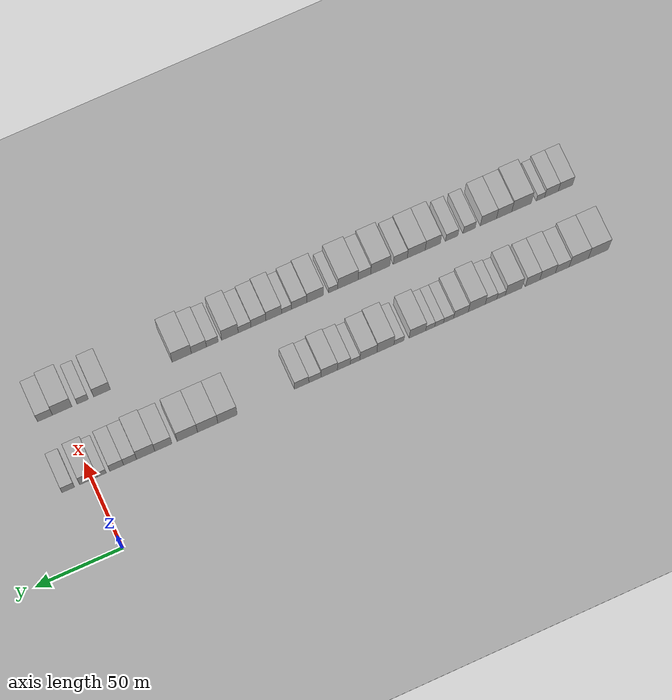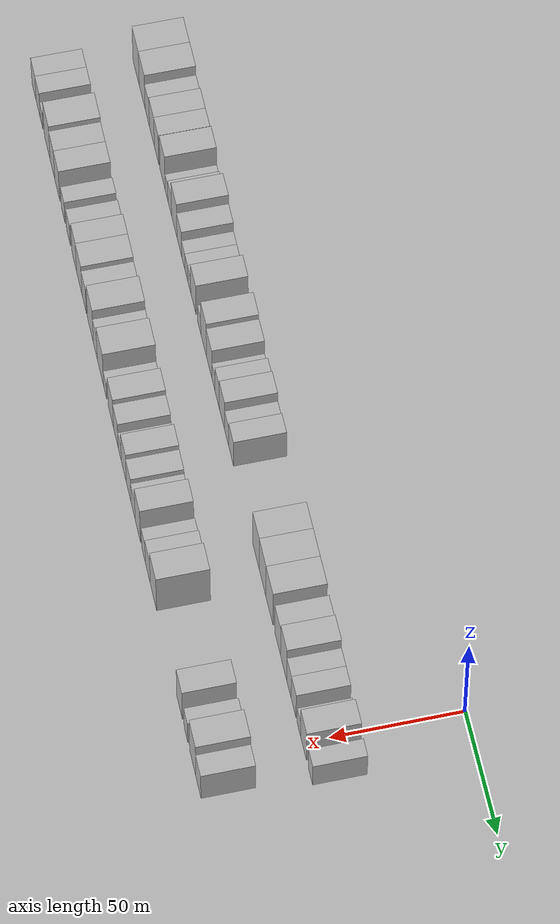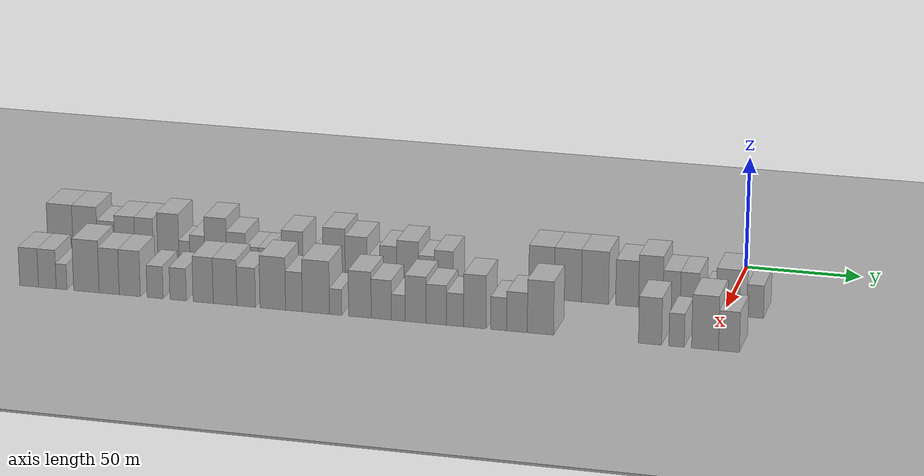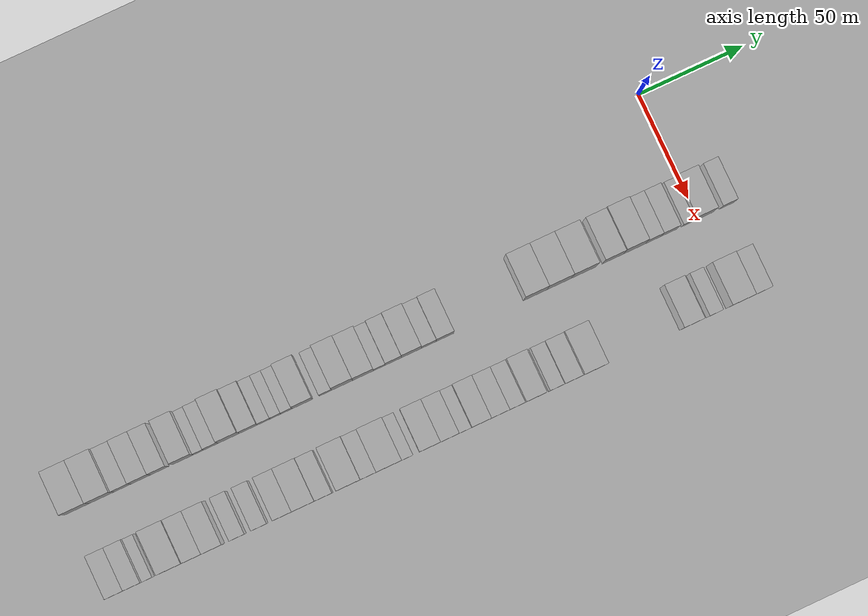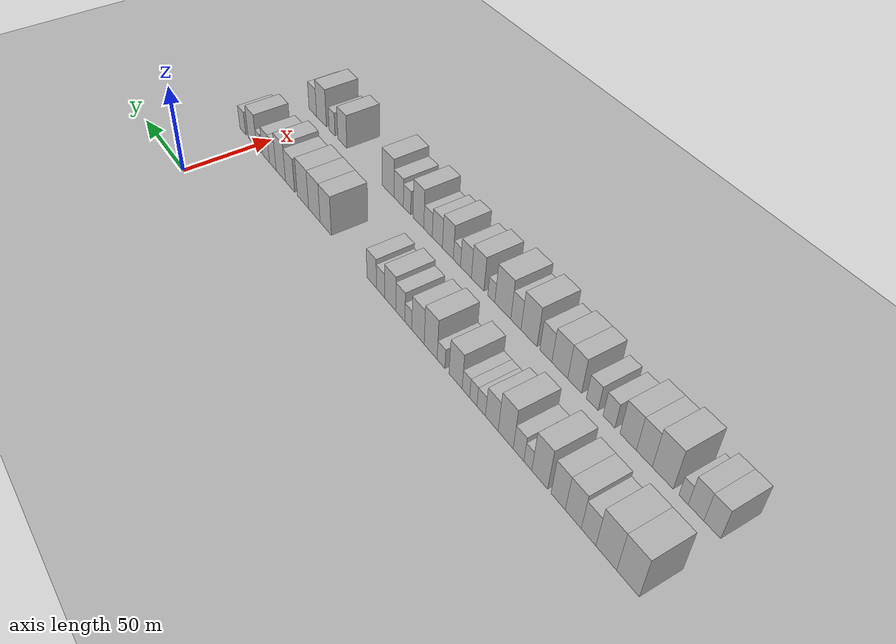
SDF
<sdf version="1.6">
 <world name="default">
  <include><name>ground_plane_1</name><uri>model://HANNAS_ground_plane</uri></include>
  <include>
   <name>ground_plane_2</name>
   <uri>model://HANNAS_ground_plane</uri>
   <pose>100 0 0  0 0 0</pose>
  </include>
  <model name="building_1">
   <static>1</static>
   <pose>50.0000 -294.1482 0 0.000000 0.000000 0.000000</pose>
   <link name="link">
    <pose>0 0 12.00 0 0 0</pose>
    <collision name="collision"><geometry><box><size>20.0000 11.7035 24.0000</size></box></geometry></collision>
    <visual name="visual">
     <cast_shadows>0</cast_shadows>
     <geometry><box><size>20.0000 11.7035 24.0000</size></box></geometry>
     <material>
      <script>
       <uri>model://HANNAS_wall/materials/scripts</uri>
       <uri>model://HANNAS_wall/materials/textures</uri>
       <name>vrc/HANNAS_wall</name>
      </script>
     </material>
    </visual>
   </link>
  </model>
  <model name="building_2">
   <static>1</static>
   <pose>50.0000 -282.6605 0 0.000000 0.000000 0.000000</pose>
   <link name="link">
    <pose>0 0 12.00 0 0 0</pose>
    <collision name="collision"><geometry><box><size>20.0000 11.2720 24.0000</size></box></geometry></collision>
    <visual name="visual">
     <cast_shadows>0</cast_shadows>
     <geometry><box><size>20.0000 11.2720 24.0000</size></box></geometry>
     <material>
      <script>
       <uri>model://HANNAS_wall/materials/scripts</uri>
       <uri>model://HANNAS_wall/materials/textures</uri>
       <name>vrc/HANNAS_wall</name>
      </script>
     </material>
    </visual>
   </link>
  </model>
  <model name="building_3">
   <static>1</static>
   <pose>50.0000 -272.9549 0 0.000000 0.000000 0.000000</pose>
   <link name="link">
    <pose>0 0 9.00 0 0 0</pose>
    <collision name="collision"><geometry><box><size>20.0000 8.1390 18.0000</size></box></geometry></collision>
    <visual name="visual">
     <cast_shadows>0</cast_shadows>
     <geometry><box><size>20.0000 8.1390 18.0000</size></box></geometry>
     <material>
      <script>
       <uri>model://HANNAS_wall/materials/scripts</uri>
       <uri>model://HANNAS_wall/materials/textures</uri>
       <name>vrc/HANNAS_wall</name>
      </script>
     </material>
    </visual>
   </link>
  </model>
  <model name="building_4">
   <static>1</static>
   <pose>50.0000 -264.2775 0 0.000000 0.000000 0.000000</pose>
   <link name="link">
    <pose>0 0 10.50 0 0 0</pose>
    <collision name="collision"><geometry><box><size>20.0000 9.2159 21.0000</size></box></geometry></collision>
    <visual name="visual">
     <cast_shadows>0</cast_shadows>
     <geometry><box><size>20.0000 9.2159 21.0000</size></box></geometry>
     <material>
      <script>
       <uri>model://HANNAS_wall/materials/scripts</uri>
       <uri>model://HANNAS_wall/materials/textures</uri>
       <name>vrc/HANNAS_wall</name>
      </script>
     </material>
    </visual>
   </link>
  </model>
  <model name="building_5">
   <static>1</static>
   <pose>50.0000 -255.4613 0 0.000000 0.000000 0.000000</pose>
   <link name="link">
    <pose>0 0 10.50 0 0 0</pose>
    <collision name="collision"><geometry><box><size>20.0000 8.4165 21.0000</size></box></geometry></collision>
    <visual name="visual">
     <cast_shadows>0</cast_shadows>
     <geometry><box><size>20.0000 8.4165 21.0000</size></box></geometry>
     <material>
      <script>
       <uri>model://HANNAS_wall/materials/scripts</uri>
       <uri>model://HANNAS_wall/materials/textures</uri>
       <name>vrc/HANNAS_wall</name>
      </script>
     </material>
    </visual>
   </link>
  </model>
  <model name="building_6">
   <static>1</static>
   <pose>50.0000 -244.3734 0 0.000000 0.000000 0.000000</pose>
   <link name="link">
    <pose>0 0 12.00 0 0 0</pose>
    <collision name="collision"><geometry><box><size>20.0000 9.7594 24.0000</size></box></geometry></collision>
    <visual name="visual">
     <cast_shadows>0</cast_shadows>
     <geometry><box><size>20.0000 9.7594 24.0000</size></box></geometry>
     <material>
      <script>
       <uri>model://HANNAS_wall/materials/scripts</uri>
       <uri>model://HANNAS_wall/materials/textures</uri>
       <name>vrc/HANNAS_wall</name>
      </script>
     </material>
    </visual>
   </link>
  </model>
  <model name="building_7">
   <static>1</static>
   <pose>50.0000 -237.0098 0 0.000000 0.000000 0.000000</pose>
   <link name="link">
    <pose>0 0 6.00 0 0 0</pose>
    <collision name="collision"><geometry><box><size>20.0000 4.9678 12.0000</size></box></geometry></collision>
    <visual name="visual">
     <cast_shadows>0</cast_shadows>
     <geometry><box><size>20.0000 4.9678 12.0000</size></box></geometry>
     <material>
      <script>
       <uri>model://HANNAS_wall/materials/scripts</uri>
       <uri>model://HANNAS_wall/materials/textures</uri>
       <name>vrc/HANNAS_wall</name>
      </script>
     </material>
    </visual>
   </link>
  </model>
  <model name="building_8">
   <static>1</static>
   <pose>50.0000 -231.1403 0 0.000000 0.000000 0.000000</pose>
   <link name="link">
    <pose>0 0 7.50 0 0 0</pose>
    <collision name="collision"><geometry><box><size>20.0000 6.7712 15.0000</size></box></geometry></collision>
    <visual name="visual">
     <cast_shadows>0</cast_shadows>
     <geometry><box><size>20.0000 6.7712 15.0000</size></box></geometry>
     <material>
      <script>
       <uri>model://HANNAS_wall/materials/scripts</uri>
       <uri>model://HANNAS_wall/materials/textures</uri>
       <name>vrc/HANNAS_wall</name>
      </script>
     </material>
    </visual>
   </link>
  </model>
  <model name="building_9">
   <static>1</static>
   <pose>50.0000 -222.8036 0 0.000000 0.000000 0.000000</pose>
   <link name="link">
    <pose>0 0 12.00 0 0 0</pose>
    <collision name="collision"><geometry><box><size>20.0000 9.9022 24.0000</size></box></geometry></collision>
    <visual name="visual">
     <cast_shadows>0</cast_shadows>
     <geometry><box><size>20.0000 9.9022 24.0000</size></box></geometry>
     <material>
      <script>
       <uri>model://HANNAS_wall/materials/scripts</uri>
       <uri>model://HANNAS_wall/materials/textures</uri>
       <name>vrc/HANNAS_wall</name>
      </script>
     </material>
    </visual>
   </link>
  </model>
  <model name="building_10">
   <static>1</static>
   <pose>50.0000 -213.5388 0 0.000000 0.000000 0.000000</pose>
   <link name="link">
    <pose>0 0 9.00 0 0 0</pose>
    <collision name="collision"><geometry><box><size>20.0000 8.6273 18.0000</size></box></geometry></collision>
    <visual name="visual">
     <cast_shadows>0</cast_shadows>
     <geometry><box><size>20.0000 8.6273 18.0000</size></box></geometry>
     <material>
      <script>
       <uri>model://HANNAS_wall/materials/scripts</uri>
       <uri>model://HANNAS_wall/materials/textures</uri>
       <name>vrc/HANNAS_wall</name>
      </script>
     </material>
    </visual>
   </link>
  </model>
  <model name="building_11">
   <static>1</static>
   <pose>50.0000 -206.2895 0 0.000000 0.000000 0.000000</pose>
   <link name="link">
    <pose>0 0 6.00 0 0 0</pose>
    <collision name="collision"><geometry><box><size>20.0000 5.8713 12.0000</size></box></geometry></collision>
    <visual name="visual">
     <cast_shadows>0</cast_shadows>
     <geometry><box><size>20.0000 5.8713 12.0000</size></box></geometry>
     <material>
      <script>
       <uri>model://HANNAS_wall/materials/scripts</uri>
       <uri>model://HANNAS_wall/materials/textures</uri>
       <name>vrc/HANNAS_wall</name>
      </script>
     </material>
    </visual>
   </link>
  </model>
  <model name="building_12">
   <static>1</static>
   <pose>50.0000 -200.8021 0 0.000000 0.000000 0.000000</pose>
   <link name="link">
    <pose>0 0 6.00 0 0 0</pose>
    <collision name="collision"><geometry><box><size>20.0000 5.1035 12.0000</size></box></geometry></collision>
    <visual name="visual">
     <cast_shadows>0</cast_shadows>
     <geometry><box><size>20.0000 5.1035 12.0000</size></box></geometry>
     <material>
      <script>
       <uri>model://HANNAS_wall/materials/scripts</uri>
       <uri>model://HANNAS_wall/materials/textures</uri>
       <name>vrc/HANNAS_wall</name>
      </script>
     </material>
    </visual>
   </link>
  </model>
  <model name="building_13">
   <static>1</static>
   <pose>50.0000 -195.5627 0 0.000000 0.000000 0.000000</pose>
   <link name="link">
    <pose>0 0 6.00 0 0 0</pose>
    <collision name="collision"><geometry><box><size>20.0000 5.3754 12.0000</size></box></geometry></collision>
    <visual name="visual">
     <cast_shadows>0</cast_shadows>
     <geometry><box><size>20.0000 5.3754 12.0000</size></box></geometry>
     <material>
      <script>
       <uri>model://HANNAS_wall/materials/scripts</uri>
       <uri>model://HANNAS_wall/materials/textures</uri>
       <name>vrc/HANNAS_wall</name>
      </script>
     </material>
    </visual>
   </link>
  </model>
  <model name="building_14">
   <static>1</static>
   <pose>50.0000 -188.0589 0 0.000000 0.000000 0.000000</pose>
   <link name="link">
    <pose>0 0 10.50 0 0 0</pose>
    <collision name="collision"><geometry><box><size>20.0000 9.6321 21.0000</size></box></geometry></collision>
    <visual name="visual">
     <cast_shadows>0</cast_shadows>
     <geometry><box><size>20.0000 9.6321 21.0000</size></box></geometry>
     <material>
      <script>
       <uri>model://HANNAS_wall/materials/scripts</uri>
       <uri>model://HANNAS_wall/materials/textures</uri>
       <name>vrc/HANNAS_wall</name>
      </script>
     </material>
    </visual>
   </link>
  </model>
  <model name="building_15">
   <static>1</static>
   <pose>50.0000 -177.3027 0 0.000000 0.000000 0.000000</pose>
   <link name="link">
    <pose>0 0 6.00 0 0 0</pose>
    <collision name="collision"><geometry><box><size>20.0000 5.8805 12.0000</size></box></geometry></collision>
    <visual name="visual">
     <cast_shadows>0</cast_shadows>
     <geometry><box><size>20.0000 5.8805 12.0000</size></box></geometry>
     <material>
      <script>
       <uri>model://HANNAS_wall/materials/scripts</uri>
       <uri>model://HANNAS_wall/materials/textures</uri>
       <name>vrc/HANNAS_wall</name>
      </script>
     </material>
    </visual>
   </link>
  </model>
  <model name="building_16">
   <static>1</static>
   <pose>50.0000 -169.3864 0 0.000000 0.000000 0.000000</pose>
   <link name="link">
    <pose>0 0 12.00 0 0 0</pose>
    <collision name="collision"><geometry><box><size>20.0000 9.9520 24.0000</size></box></geometry></collision>
    <visual name="visual">
     <cast_shadows>0</cast_shadows>
     <geometry><box><size>20.0000 9.9520 24.0000</size></box></geometry>
     <material>
      <script>
       <uri>model://HANNAS_wall/materials/scripts</uri>
       <uri>model://HANNAS_wall/materials/textures</uri>
       <name>vrc/HANNAS_wall</name>
      </script>
     </material>
    </visual>
   </link>
  </model>
  <model name="building_17">
   <static>1</static>
   <pose>50.0000 -159.4956 0 0.000000 0.000000 0.000000</pose>
   <link name="link">
    <pose>0 0 10.50 0 0 0</pose>
    <collision name="collision"><geometry><box><size>20.0000 9.8298 21.0000</size></box></geometry></collision>
    <visual name="visual">
     <cast_shadows>0</cast_shadows>
     <geometry><box><size>20.0000 9.8298 21.0000</size></box></geometry>
     <material>
      <script>
       <uri>model://HANNAS_wall/materials/scripts</uri>
       <uri>model://HANNAS_wall/materials/textures</uri>
       <name>vrc/HANNAS_wall</name>
      </script>
     </material>
    </visual>
   </link>
  </model>
  <model name="building_18">
   <static>1</static>
   <pose>50.0000 -151.7910 0 0.000000 0.000000 0.000000</pose>
   <link name="link">
    <pose>0 0 6.00 0 0 0</pose>
    <collision name="collision"><geometry><box><size>20.0000 5.5794 12.0000</size></box></geometry></collision>
    <visual name="visual">
     <cast_shadows>0</cast_shadows>
     <geometry><box><size>20.0000 5.5794 12.0000</size></box></geometry>
     <material>
      <script>
       <uri>model://HANNAS_wall/materials/scripts</uri>
       <uri>model://HANNAS_wall/materials/textures</uri>
       <name>vrc/HANNAS_wall</name>
      </script>
     </material>
    </visual>
   </link>
  </model>
  <model name="building_19">
   <static>1</static>
   <pose>50.0000 -145.2090 0 0.000000 0.000000 0.000000</pose>
   <link name="link">
    <pose>0 0 9.00 0 0 0</pose>
    <collision name="collision"><geometry><box><size>20.0000 7.5845 18.0000</size></box></geometry></collision>
    <visual name="visual">
     <cast_shadows>0</cast_shadows>
     <geometry><box><size>20.0000 7.5845 18.0000</size></box></geometry>
     <material>
      <script>
       <uri>model://HANNAS_wall/materials/scripts</uri>
       <uri>model://HANNAS_wall/materials/textures</uri>
       <name>vrc/HANNAS_wall</name>
      </script>
     </material>
    </visual>
   </link>
  </model>
  <model name="building_20">
   <static>1</static>
   <pose>50.0000 -136.6767 0 0.000000 0.000000 0.000000</pose>
   <link name="link">
    <pose>0 0 10.50 0 0 0</pose>
    <collision name="collision"><geometry><box><size>20.0000 9.4801 21.0000</size></box></geometry></collision>
    <visual name="visual">
     <cast_shadows>0</cast_shadows>
     <geometry><box><size>20.0000 9.4801 21.0000</size></box></geometry>
     <material>
      <script>
       <uri>model://HANNAS_wall/materials/scripts</uri>
       <uri>model://HANNAS_wall/materials/textures</uri>
       <name>vrc/HANNAS_wall</name>
      </script>
     </material>
    </visual>
   </link>
  </model>
  <model name="building_21">
   <static>1</static>
   <pose>50.0000 -128.4001 0 0.000000 0.000000 0.000000</pose>
   <link name="link">
    <pose>0 0 7.50 0 0 0</pose>
    <collision name="collision"><geometry><box><size>20.0000 7.0731 15.0000</size></box></geometry></collision>
    <visual name="visual">
     <cast_shadows>0</cast_shadows>
     <geometry><box><size>20.0000 7.0731 15.0000</size></box></geometry>
     <material>
      <script>
       <uri>model://HANNAS_wall/materials/scripts</uri>
       <uri>model://HANNAS_wall/materials/textures</uri>
       <name>vrc/HANNAS_wall</name>
      </script>
     </material>
    </visual>
   </link>
  </model>
  <model name="building_22">
   <static>1</static>
   <pose>50.0000 -120.6991 0 0.000000 0.000000 0.000000</pose>
   <link name="link">
    <pose>0 0 9.00 0 0 0</pose>
    <collision name="collision"><geometry><box><size>20.0000 8.3287 18.0000</size></box></geometry></collision>
    <visual name="visual">
     <cast_shadows>0</cast_shadows>
     <geometry><box><size>20.0000 8.3287 18.0000</size></box></geometry>
     <material>
      <script>
       <uri>model://HANNAS_wall/materials/scripts</uri>
       <uri>model://HANNAS_wall/materials/textures</uri>
       <name>vrc/HANNAS_wall</name>
      </script>
     </material>
    </visual>
   </link>
  </model>
  <model name="building_23">
   <static>1</static>
   <pose>50.0000 -77.7936 0 0.000000 0.000000 0.000000</pose>
   <link name="link">
    <pose>0 0 12.00 0 0 0</pose>
    <collision name="collision"><geometry><box><size>20.0000 11.1608 24.0000</size></box></geometry></collision>
    <visual name="visual">
     <cast_shadows>0</cast_shadows>
     <geometry><box><size>20.0000 11.1608 24.0000</size></box></geometry>
     <material>
      <script>
       <uri>model://HANNAS_wall/materials/scripts</uri>
       <uri>model://HANNAS_wall/materials/textures</uri>
       <name>vrc/HANNAS_wall</name>
      </script>
     </material>
    </visual>
   </link>
  </model>
  <model name="building_24">
   <static>1</static>
   <pose>50.0000 -66.3565 0 0.000000 0.000000 0.000000</pose>
   <link name="link">
    <pose>0 0 12.00 0 0 0</pose>
    <collision name="collision"><geometry><box><size>20.0000 11.7134 24.0000</size></box></geometry></collision>
    <visual name="visual">
     <cast_shadows>0</cast_shadows>
     <geometry><box><size>20.0000 11.7134 24.0000</size></box></geometry>
     <material>
      <script>
       <uri>model://HANNAS_wall/materials/scripts</uri>
       <uri>model://HANNAS_wall/materials/textures</uri>
       <name>vrc/HANNAS_wall</name>
      </script>
     </material>
    </visual>
   </link>
  </model>
  <model name="building_25">
   <static>1</static>
   <pose>50.0000 -54.6394 0 0.000000 0.000000 0.000000</pose>
   <link name="link">
    <pose>0 0 12.00 0 0 0</pose>
    <collision name="collision"><geometry><box><size>20.0000 11.7207 24.0000</size></box></geometry></collision>
    <visual name="visual">
     <cast_shadows>0</cast_shadows>
     <geometry><box><size>20.0000 11.7207 24.0000</size></box></geometry>
     <material>
      <script>
       <uri>model://HANNAS_wall/materials/scripts</uri>
       <uri>model://HANNAS_wall/materials/textures</uri>
       <name>vrc/HANNAS_wall</name>
      </script>
     </material>
    </visual>
   </link>
  </model>
  <model name="building_26">
   <static>1</static>
   <pose>50.0000 -40.8496 0 0.000000 0.000000 0.000000</pose>
   <link name="link">
    <pose>0 0 10.50 0 0 0</pose>
    <collision name="collision"><geometry><box><size>20.0000 9.8590 21.0000</size></box></geometry></collision>
    <visual name="visual">
     <cast_shadows>0</cast_shadows>
     <geometry><box><size>20.0000 9.8590 21.0000</size></box></geometry>
     <material>
      <script>
       <uri>model://HANNAS_wall/materials/scripts</uri>
       <uri>model://HANNAS_wall/materials/textures</uri>
       <name>vrc/HANNAS_wall</name>
      </script>
     </material>
    </visual>
   </link>
  </model>
  <model name="building_27">
   <static>1</static>
   <pose>50.0000 -30.7052 0 0.000000 0.000000 0.000000</pose>
   <link name="link">
    <pose>0 0 12.00 0 0 0</pose>
    <collision name="collision"><geometry><box><size>20.0000 10.4298 24.0000</size></box></geometry></collision>
    <visual name="visual">
     <cast_shadows>0</cast_shadows>
     <geometry><box><size>20.0000 10.4298 24.0000</size></box></geometry>
     <material>
      <script>
       <uri>model://HANNAS_wall/materials/scripts</uri>
       <uri>model://HANNAS_wall/materials/textures</uri>
       <name>vrc/HANNAS_wall</name>
      </script>
     </material>
    </visual>
   </link>
  </model>
  <model name="building_28">
   <static>1</static>
   <pose>50.0000 -21.7638 0 0.000000 0.000000 0.000000</pose>
   <link name="link">
    <pose>0 0 9.00 0 0 0</pose>
    <collision name="collision"><geometry><box><size>20.0000 7.4530 18.0000</size></box></geometry></collision>
    <visual name="visual">
     <cast_shadows>0</cast_shadows>
     <geometry><box><size>20.0000 7.4530 18.0000</size></box></geometry>
     <material>
      <script>
       <uri>model://HANNAS_wall/materials/scripts</uri>
       <uri>model://HANNAS_wall/materials/textures</uri>
       <name>vrc/HANNAS_wall</name>
      </script>
     </material>
    </visual>
   </link>
  </model>
  <model name="building_29">
   <static>1</static>
   <pose>50.0000 -14.0712 0 0.000000 0.000000 0.000000</pose>
   <link name="link">
    <pose>0 0 9.00 0 0 0</pose>
    <collision name="collision"><geometry><box><size>20.0000 7.9321 18.0000</size></box></geometry></collision>
    <visual name="visual">
     <cast_shadows>0</cast_shadows>
     <geometry><box><size>20.0000 7.9321 18.0000</size></box></geometry>
     <material>
      <script>
       <uri>model://HANNAS_wall/materials/scripts</uri>
       <uri>model://HANNAS_wall/materials/textures</uri>
       <name>vrc/HANNAS_wall</name>
      </script>
     </material>
    </visual>
   </link>
  </model>
  <model name="building_30">
   <static>1</static>
   <pose>50.0000 -5.4879 0 0.000000 0.000000 0.000000</pose>
   <link name="link">
    <pose>0 0 6.00 0 0 0</pose>
    <collision name="collision"><geometry><box><size>20.0000 5.2346 12.0000</size></box></geometry></collision>
    <visual name="visual">
     <cast_shadows>0</cast_shadows>
     <geometry><box><size>20.0000 5.2346 12.0000</size></box></geometry>
     <material>
      <script>
       <uri>model://HANNAS_wall/materials/scripts</uri>
       <uri>model://HANNAS_wall/materials/textures</uri>
       <name>vrc/HANNAS_wall</name>
      </script>
     </material>
    </visual>
   </link>
  </model>
  <model name="building_31">
   <static>1</static>
   <pose>50.0000 2.1301 0 0.000000 0.000000 0.000000</pose>
   <link name="link">
    <pose>0 0 10.50 0 0 0</pose>
    <collision name="collision"><geometry><box><size>20.0000 10.0014 21.0000</size></box></geometry></collision>
    <visual name="visual">
     <cast_shadows>0</cast_shadows>
     <geometry><box><size>20.0000 10.0014 21.0000</size></box></geometry>
     <material>
      <script>
       <uri>model://HANNAS_wall/materials/scripts</uri>
       <uri>model://HANNAS_wall/materials/textures</uri>
       <name>vrc/HANNAS_wall</name>
      </script>
     </material>
    </visual>
   </link>
  </model>
  <model name="building_32">
   <static>1</static>
   <pose>50.0000 13.6980 0 0.000000 0.000000 0.000000</pose>
   <link name="link">
    <pose>0 0 7.50 0 0 0</pose>
    <collision name="collision"><geometry><box><size>20.0000 7.1344 15.0000</size></box></geometry></collision>
    <visual name="visual">
     <cast_shadows>0</cast_shadows>
     <geometry><box><size>20.0000 7.1344 15.0000</size></box></geometry>
     <material>
      <script>
       <uri>model://HANNAS_wall/materials/scripts</uri>
       <uri>model://HANNAS_wall/materials/textures</uri>
       <name>vrc/HANNAS_wall</name>
      </script>
     </material>
    </visual>
   </link>
  </model>
  <model name="building_65">
   <static>1</static>
   <pose>90.0000 -293.7502 0 0.000000 0.000000 0.000000</pose>
   <link name="link">
    <pose>0 0 9.00 0 0 0</pose>
    <collision name="collision"><geometry><box><size>20.0000 8.4997 18.0000</size></box></geometry></collision>
    <visual name="visual">
     <cast_shadows>0</cast_shadows>
     <geometry><box><size>20.0000 8.4997 18.0000</size></box></geometry>
     <material>
      <script>
       <uri>model://HANNAS_wall/materials/scripts</uri>
       <uri>model://HANNAS_wall/materials/textures</uri>
       <name>vrc/HANNAS_wall</name>
      </script>
     </material>
    </visual>
   </link>
  </model>
  <model name="building_66">
   <static>1</static>
   <pose>90.0000 -285.4611 0 0.000000 0.000000 0.000000</pose>
   <link name="link">
    <pose>0 0 9.00 0 0 0</pose>
    <collision name="collision"><geometry><box><size>20.0000 8.0784 18.0000</size></box></geometry></collision>
    <visual name="visual">
     <cast_shadows>0</cast_shadows>
     <geometry><box><size>20.0000 8.0784 18.0000</size></box></geometry>
     <material>
      <script>
       <uri>model://HANNAS_wall/materials/scripts</uri>
       <uri>model://HANNAS_wall/materials/textures</uri>
       <name>vrc/HANNAS_wall</name>
      </script>
     </material>
    </visual>
   </link>
  </model>
  <model name="building_67">
   <static>1</static>
   <pose>90.0000 -278.9709 0 0.000000 0.000000 0.000000</pose>
   <link name="link">
    <pose>0 0 6.00 0 0 0</pose>
    <collision name="collision"><geometry><box><size>20.0000 4.9021 12.0000</size></box></geometry></collision>
    <visual name="visual">
     <cast_shadows>0</cast_shadows>
     <geometry><box><size>20.0000 4.9021 12.0000</size></box></geometry>
     <material>
      <script>
       <uri>model://HANNAS_wall/materials/scripts</uri>
       <uri>model://HANNAS_wall/materials/textures</uri>
       <name>vrc/HANNAS_wall</name>
      </script>
     </material>
    </visual>
   </link>
  </model>
  <model name="building_68">
   <static>1</static>
   <pose>90.0000 -267.7687 0 0.000000 0.000000 0.000000</pose>
   <link name="link">
    <pose>0 0 12.00 0 0 0</pose>
    <collision name="collision"><geometry><box><size>20.0000 11.5023 24.0000</size></box></geometry></collision>
    <visual name="visual">
     <cast_shadows>0</cast_shadows>
     <geometry><box><size>20.0000 11.5023 24.0000</size></box></geometry>
     <material>
      <script>
       <uri>model://HANNAS_wall/materials/scripts</uri>
       <uri>model://HANNAS_wall/materials/textures</uri>
       <name>vrc/HANNAS_wall</name>
      </script>
     </material>
    </visual>
   </link>
  </model>
  <model name="building_69">
   <static>1</static>
   <pose>90.0000 -257.5056 0 0.000000 0.000000 0.000000</pose>
   <link name="link">
    <pose>0 0 10.50 0 0 0</pose>
    <collision name="collision"><geometry><box><size>20.0000 9.0239 21.0000</size></box></geometry></collision>
    <visual name="visual">
     <cast_shadows>0</cast_shadows>
     <geometry><box><size>20.0000 9.0239 21.0000</size></box></geometry>
     <material>
      <script>
       <uri>model://HANNAS_wall/materials/scripts</uri>
       <uri>model://HANNAS_wall/materials/textures</uri>
       <name>vrc/HANNAS_wall</name>
      </script>
     </material>
    </visual>
   </link>
  </model>
  <model name="building_70">
   <static>1</static>
   <pose>90.0000 -248.2330 0 0.000000 0.000000 0.000000</pose>
   <link name="link">
    <pose>0 0 10.50 0 0 0</pose>
    <collision name="collision"><geometry><box><size>20.0000 9.5214 21.0000</size></box></geometry></collision>
    <visual name="visual">
     <cast_shadows>0</cast_shadows>
     <geometry><box><size>20.0000 9.5214 21.0000</size></box></geometry>
     <material>
      <script>
       <uri>model://HANNAS_wall/materials/scripts</uri>
       <uri>model://HANNAS_wall/materials/textures</uri>
       <name>vrc/HANNAS_wall</name>
      </script>
     </material>
    </visual>
   </link>
  </model>
  <model name="building_71">
   <static>1</static>
   <pose>90.0000 -236.8808 0 0.000000 0.000000 0.000000</pose>
   <link name="link">
    <pose>0 0 7.50 0 0 0</pose>
    <collision name="collision"><geometry><box><size>20.0000 7.1831 15.0000</size></box></geometry></collision>
    <visual name="visual">
     <cast_shadows>0</cast_shadows>
     <geometry><box><size>20.0000 7.1831 15.0000</size></box></geometry>
     <material>
      <script>
       <uri>model://HANNAS_wall/materials/scripts</uri>
       <uri>model://HANNAS_wall/materials/textures</uri>
       <name>vrc/HANNAS_wall</name>
      </script>
     </material>
    </visual>
   </link>
  </model>
  <model name="building_72">
   <static>1</static>
   <pose>90.0000 -226.6260 0 0.000000 0.000000 0.000000</pose>
   <link name="link">
    <pose>0 0 7.50 0 0 0</pose>
    <collision name="collision"><geometry><box><size>20.0000 7.3265 15.0000</size></box></geometry></collision>
    <visual name="visual">
     <cast_shadows>0</cast_shadows>
     <geometry><box><size>20.0000 7.3265 15.0000</size></box></geometry>
     <material>
      <script>
       <uri>model://HANNAS_wall/materials/scripts</uri>
       <uri>model://HANNAS_wall/materials/textures</uri>
       <name>vrc/HANNAS_wall</name>
      </script>
     </material>
    </visual>
   </link>
  </model>
  <model name="building_73">
   <static>1</static>
   <pose>90.0000 -215.5003 0 0.000000 0.000000 0.000000</pose>
   <link name="link">
    <pose>0 0 10.50 0 0 0</pose>
    <collision name="collision"><geometry><box><size>20.0000 8.9249 21.0000</size></box></geometry></collision>
    <visual name="visual">
     <cast_shadows>0</cast_shadows>
     <geometry><box><size>20.0000 8.9249 21.0000</size></box></geometry>
     <material>
      <script>
       <uri>model://HANNAS_wall/materials/scripts</uri>
       <uri>model://HANNAS_wall/materials/textures</uri>
       <name>vrc/HANNAS_wall</name>
      </script>
     </material>
    </visual>
   </link>
  </model>
  <model name="building_74">
   <static>1</static>
   <pose>90.0000 -205.7942 0 0.000000 0.000000 0.000000</pose>
   <link name="link">
    <pose>0 0 10.50 0 0 0</pose>
    <collision name="collision"><geometry><box><size>20.0000 10.4873 21.0000</size></box></geometry></collision>
    <visual name="visual">
     <cast_shadows>0</cast_shadows>
     <geometry><box><size>20.0000 10.4873 21.0000</size></box></geometry>
     <material>
      <script>
       <uri>model://HANNAS_wall/materials/scripts</uri>
       <uri>model://HANNAS_wall/materials/textures</uri>
       <name>vrc/HANNAS_wall</name>
      </script>
     </material>
    </visual>
   </link>
  </model>
  <model name="building_75">
   <static>1</static>
   <pose>90.0000 -196.4518 0 0.000000 0.000000 0.000000</pose>
   <link name="link">
    <pose>0 0 9.00 0 0 0</pose>
    <collision name="collision"><geometry><box><size>20.0000 8.1975 18.0000</size></box></geometry></collision>
    <visual name="visual">
     <cast_shadows>0</cast_shadows>
     <geometry><box><size>20.0000 8.1975 18.0000</size></box></geometry>
     <material>
      <script>
       <uri>model://HANNAS_wall/materials/scripts</uri>
       <uri>model://HANNAS_wall/materials/textures</uri>
       <name>vrc/HANNAS_wall</name>
      </script>
     </material>
    </visual>
   </link>
  </model>
  <model name="building_76">
   <static>1</static>
   <pose>90.0000 -184.7329 0 0.000000 0.000000 0.000000</pose>
   <link name="link">
    <pose>0 0 12.00 0 0 0</pose>
    <collision name="collision"><geometry><box><size>20.0000 11.2403 24.0000</size></box></geometry></collision>
    <visual name="visual">
     <cast_shadows>0</cast_shadows>
     <geometry><box><size>20.0000 11.2403 24.0000</size></box></geometry>
     <material>
      <script>
       <uri>model://HANNAS_wall/materials/scripts</uri>
       <uri>model://HANNAS_wall/materials/textures</uri>
       <name>vrc/HANNAS_wall</name>
      </script>
     </material>
    </visual>
   </link>
  </model>
  <model name="building_77">
   <static>1</static>
   <pose>90.0000 -175.4276 0 0.000000 0.000000 0.000000</pose>
   <link name="link">
    <pose>0 0 9.00 0 0 0</pose>
    <collision name="collision"><geometry><box><size>20.0000 7.3704 18.0000</size></box></geometry></collision>
    <visual name="visual">
     <cast_shadows>0</cast_shadows>
     <geometry><box><size>20.0000 7.3704 18.0000</size></box></geometry>
     <material>
      <script>
       <uri>model://HANNAS_wall/materials/scripts</uri>
       <uri>model://HANNAS_wall/materials/textures</uri>
       <name>vrc/HANNAS_wall</name>
      </script>
     </material>
    </visual>
   </link>
  </model>
  <model name="building_78">
   <static>1</static>
   <pose>90.0000 -165.8020 0 0.000000 0.000000 0.000000</pose>
   <link name="link">
    <pose>0 0 12.00 0 0 0</pose>
    <collision name="collision"><geometry><box><size>20.0000 11.8809 24.0000</size></box></geometry></collision>
    <visual name="visual">
     <cast_shadows>0</cast_shadows>
     <geometry><box><size>20.0000 11.8809 24.0000</size></box></geometry>
     <material>
      <script>
       <uri>model://HANNAS_wall/materials/scripts</uri>
       <uri>model://HANNAS_wall/materials/textures</uri>
       <name>vrc/HANNAS_wall</name>
      </script>
     </material>
    </visual>
   </link>
  </model>
  <model name="building_79">
   <static>1</static>
   <pose>90.0000 -157.2036 0 0.000000 0.000000 0.000000</pose>
   <link name="link">
    <pose>0 0 6.00 0 0 0</pose>
    <collision name="collision"><geometry><box><size>20.0000 5.3159 12.0000</size></box></geometry></collision>
    <visual name="visual">
     <cast_shadows>0</cast_shadows>
     <geometry><box><size>20.0000 5.3159 12.0000</size></box></geometry>
     <material>
      <script>
       <uri>model://HANNAS_wall/materials/scripts</uri>
       <uri>model://HANNAS_wall/materials/textures</uri>
       <name>vrc/HANNAS_wall</name>
      </script>
     </material>
    </visual>
   </link>
  </model>
  <model name="building_80">
   <static>1</static>
   <pose>90.0000 -146.6384 0 0.000000 0.000000 0.000000</pose>
   <link name="link">
    <pose>0 0 10.50 0 0 0</pose>
    <collision name="collision"><geometry><box><size>20.0000 9.8146 21.0000</size></box></geometry></collision>
    <visual name="visual">
     <cast_shadows>0</cast_shadows>
     <geometry><box><size>20.0000 9.8146 21.0000</size></box></geometry>
     <material>
      <script>
       <uri>model://HANNAS_wall/materials/scripts</uri>
       <uri>model://HANNAS_wall/materials/textures</uri>
       <name>vrc/HANNAS_wall</name>
      </script>
     </material>
    </visual>
   </link>
  </model>
  <model name="building_81">
   <static>1</static>
   <pose>90.0000 -137.3453 0 0.000000 0.000000 0.000000</pose>
   <link name="link">
    <pose>0 0 9.00 0 0 0</pose>
    <collision name="collision"><geometry><box><size>20.0000 8.7716 18.0000</size></box></geometry></collision>
    <visual name="visual">
     <cast_shadows>0</cast_shadows>
     <geometry><box><size>20.0000 8.7716 18.0000</size></box></geometry>
     <material>
      <script>
       <uri>model://HANNAS_wall/materials/scripts</uri>
       <uri>model://HANNAS_wall/materials/textures</uri>
       <name>vrc/HANNAS_wall</name>
      </script>
     </material>
    </visual>
   </link>
  </model>
  <model name="building_82">
   <static>1</static>
   <pose>90.0000 -130.0260 0 0.000000 0.000000 0.000000</pose>
   <link name="link">
    <pose>0 0 6.00 0 0 0</pose>
    <collision name="collision"><geometry><box><size>20.0000 5.8669 12.0000</size></box></geometry></collision>
    <visual name="visual">
     <cast_shadows>0</cast_shadows>
     <geometry><box><size>20.0000 5.8669 12.0000</size></box></geometry>
     <material>
      <script>
       <uri>model://HANNAS_wall/materials/scripts</uri>
       <uri>model://HANNAS_wall/materials/textures</uri>
       <name>vrc/HANNAS_wall</name>
      </script>
     </material>
    </visual>
   </link>
  </model>
  <model name="building_83">
   <static>1</static>
   <pose>90.0000 -122.5373 0 0.000000 0.000000 0.000000</pose>
   <link name="link">
    <pose>0 0 10.50 0 0 0</pose>
    <collision name="collision"><geometry><box><size>20.0000 9.1106 21.0000</size></box></geometry></collision>
    <visual name="visual">
     <cast_shadows>0</cast_shadows>
     <geometry><box><size>20.0000 9.1106 21.0000</size></box></geometry>
     <material>
      <script>
       <uri>model://HANNAS_wall/materials/scripts</uri>
       <uri>model://HANNAS_wall/materials/textures</uri>
       <name>vrc/HANNAS_wall</name>
      </script>
     </material>
    </visual>
   </link>
  </model>
  <model name="building_84">
   <static>1</static>
   <pose>90.0000 -113.6392 0 0.000000 0.000000 0.000000</pose>
   <link name="link">
    <pose>0 0 9.00 0 0 0</pose>
    <collision name="collision"><geometry><box><size>20.0000 8.6855 18.0000</size></box></geometry></collision>
    <visual name="visual">
     <cast_shadows>0</cast_shadows>
     <geometry><box><size>20.0000 8.6855 18.0000</size></box></geometry>
     <material>
      <script>
       <uri>model://HANNAS_wall/materials/scripts</uri>
       <uri>model://HANNAS_wall/materials/textures</uri>
       <name>vrc/HANNAS_wall</name>
      </script>
     </material>
    </visual>
   </link>
  </model>
  <model name="building_85">
   <static>1</static>
   <pose>90.0000 -105.5969 0 0.000000 0.000000 0.000000</pose>
   <link name="link">
    <pose>0 0 7.50 0 0 0</pose>
    <collision name="collision"><geometry><box><size>20.0000 7.3992 15.0000</size></box></geometry></collision>
    <visual name="visual">
     <cast_shadows>0</cast_shadows>
     <geometry><box><size>20.0000 7.3992 15.0000</size></box></geometry>
     <material>
      <script>
       <uri>model://HANNAS_wall/materials/scripts</uri>
       <uri>model://HANNAS_wall/materials/textures</uri>
       <name>vrc/HANNAS_wall</name>
      </script>
     </material>
    </visual>
   </link>
  </model>
  <model name="building_86">
   <static>1</static>
   <pose>90.0000 -97.0830 0 0.000000 0.000000 0.000000</pose>
   <link name="link">
    <pose>0 0 12.00 0 0 0</pose>
    <collision name="collision"><geometry><box><size>20.0000 9.6287 24.0000</size></box></geometry></collision>
    <visual name="visual">
     <cast_shadows>0</cast_shadows>
     <geometry><box><size>20.0000 9.6287 24.0000</size></box></geometry>
     <material>
      <script>
       <uri>model://HANNAS_wall/materials/scripts</uri>
       <uri>model://HANNAS_wall/materials/textures</uri>
       <name>vrc/HANNAS_wall</name>
      </script>
     </material>
    </visual>
   </link>
  </model>
  <model name="building_87">
   <static>1</static>
   <pose>90.0000 -86.8640 0 0.000000 0.000000 0.000000</pose>
   <link name="link">
    <pose>0 0 7.50 0 0 0</pose>
    <collision name="collision"><geometry><box><size>20.0000 6.8093 15.0000</size></box></geometry></collision>
    <visual name="visual">
     <cast_shadows>0</cast_shadows>
     <geometry><box><size>20.0000 6.8093 15.0000</size></box></geometry>
     <material>
      <script>
       <uri>model://HANNAS_wall/materials/scripts</uri>
       <uri>model://HANNAS_wall/materials/textures</uri>
       <name>vrc/HANNAS_wall</name>
      </script>
     </material>
    </visual>
   </link>
  </model>
  <model name="building_88">
   <static>1</static>
   <pose>90.0000 -79.1011 0 0.000000 0.000000 0.000000</pose>
   <link name="link">
    <pose>0 0 9.00 0 0 0</pose>
    <collision name="collision"><geometry><box><size>20.0000 8.7165 18.0000</size></box></geometry></collision>
    <visual name="visual">
     <cast_shadows>0</cast_shadows>
     <geometry><box><size>20.0000 8.7165 18.0000</size></box></geometry>
     <material>
      <script>
       <uri>model://HANNAS_wall/materials/scripts</uri>
       <uri>model://HANNAS_wall/materials/textures</uri>
       <name>vrc/HANNAS_wall</name>
      </script>
     </material>
    </visual>
   </link>
  </model>
  <model name="building_89">
   <static>1</static>
   <pose>90.0000 -69.1497 0 0.000000 0.000000 0.000000</pose>
   <link name="link">
    <pose>0 0 12.00 0 0 0</pose>
    <collision name="collision"><geometry><box><size>20.0000 11.1864 24.0000</size></box></geometry></collision>
    <visual name="visual">
     <cast_shadows>0</cast_shadows>
     <geometry><box><size>20.0000 11.1864 24.0000</size></box></geometry>
     <material>
      <script>
       <uri>model://HANNAS_wall/materials/scripts</uri>
       <uri>model://HANNAS_wall/materials/textures</uri>
       <name>vrc/HANNAS_wall</name>
      </script>
     </material>
    </visual>
   </link>
  </model>
  <model name="building_90">
   <static>1</static>
   <pose>90.0000 -23.0696 0 0.000000 0.000000 0.000000</pose>
   <link name="link">
    <pose>0 0 10.50 0 0 0</pose>
    <collision name="collision"><geometry><box><size>20.0000 9.6579 21.0000</size></box></geometry></collision>
    <visual name="visual">
     <cast_shadows>0</cast_shadows>
     <geometry><box><size>20.0000 9.6579 21.0000</size></box></geometry>
     <material>
      <script>
       <uri>model://HANNAS_wall/materials/scripts</uri>
       <uri>model://HANNAS_wall/materials/textures</uri>
       <name>vrc/HANNAS_wall</name>
      </script>
     </material>
    </visual>
   </link>
  </model>
  <model name="building_91">
   <static>1</static>
   <pose>90.0000 -12.0078 0 0.000000 0.000000 0.000000</pose>
   <link name="link">
    <pose>0 0 7.50 0 0 0</pose>
    <collision name="collision"><geometry><box><size>20.0000 6.4658 15.0000</size></box></geometry></collision>
    <visual name="visual">
     <cast_shadows>0</cast_shadows>
     <geometry><box><size>20.0000 6.4658 15.0000</size></box></geometry>
     <material>
      <script>
       <uri>model://HANNAS_wall/materials/scripts</uri>
       <uri>model://HANNAS_wall/materials/textures</uri>
       <name>vrc/HANNAS_wall</name>
      </script>
     </material>
    </visual>
   </link>
  </model>
  <model name="building_92">
   <static>1</static>
   <pose>90.0000 -0.2217 0 0.000000 0.000000 0.000000</pose>
   <link name="link">
    <pose>0 0 12.00 0 0 0</pose>
    <collision name="collision"><geometry><box><size>20.0000 11.1062 24.0000</size></box></geometry></collision>
    <visual name="visual">
     <cast_shadows>0</cast_shadows>
     <geometry><box><size>20.0000 11.1062 24.0000</size></box></geometry>
     <material>
      <script>
       <uri>model://HANNAS_wall/materials/scripts</uri>
       <uri>model://HANNAS_wall/materials/textures</uri>
       <name>vrc/HANNAS_wall</name>
      </script>
     </material>
    </visual>
   </link>
  </model>
  <model name="building_93">
   <static>1</static>
   <pose>90.0000 9.6624 0 0.000000 0.000000 0.000000</pose>
   <link name="link">
    <pose>0 0 9.00 0 0 0</pose>
    <collision name="collision"><geometry><box><size>20.0000 8.6620 18.0000</size></box></geometry></collision>
    <visual name="visual">
     <cast_shadows>0</cast_shadows>
     <geometry><box><size>20.0000 8.6620 18.0000</size></box></geometry>
     <material>
      <script>
       <uri>model://HANNAS_wall/materials/scripts</uri>
       <uri>model://HANNAS_wall/materials/textures</uri>
       <name>vrc/HANNAS_wall</name>
      </script>
     </material>
    </visual>
   </link>
  </model>
 </world>
</sdf>
